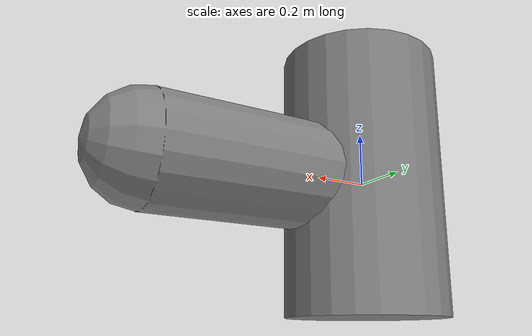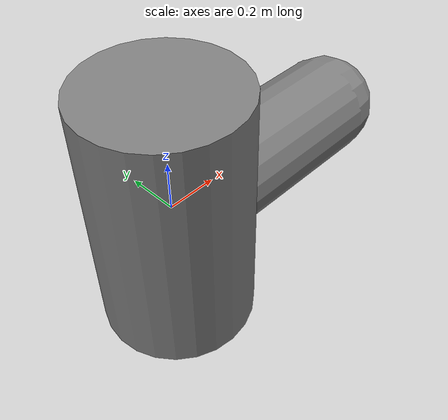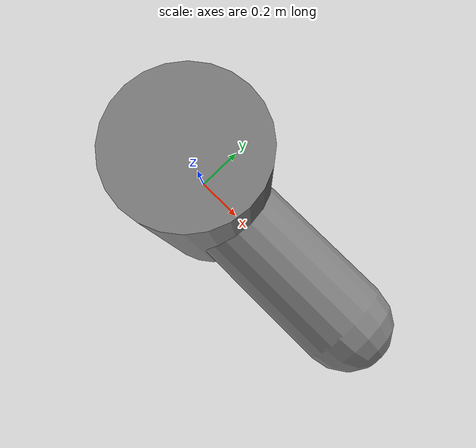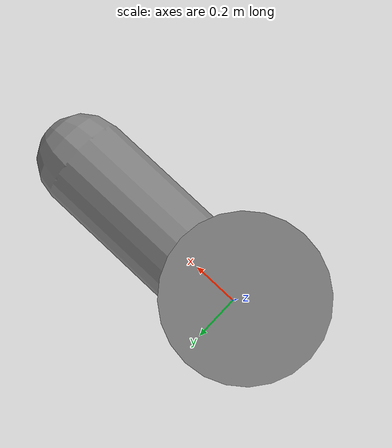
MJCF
<mujoco model="cyl_cap_perp">
            <option gravity="0 0 0" timestep="0.001"/>
            <worldbody>
                <body name="cyl" pos="0 0 0">
                    <joint type="free"/>
                    <geom type="cylinder" size="0.3 0.5"/>
                </body>
                <body name="cap" pos="0.45 0 0" euler="0 90 0">
                    <joint type="free"/>
                    <geom type="capsule" size="0.2 0.4"/>
                </body>
            </worldbody>
        </mujoco>
